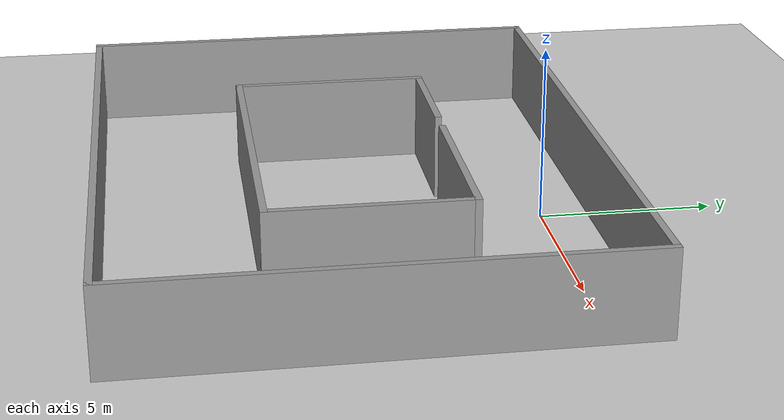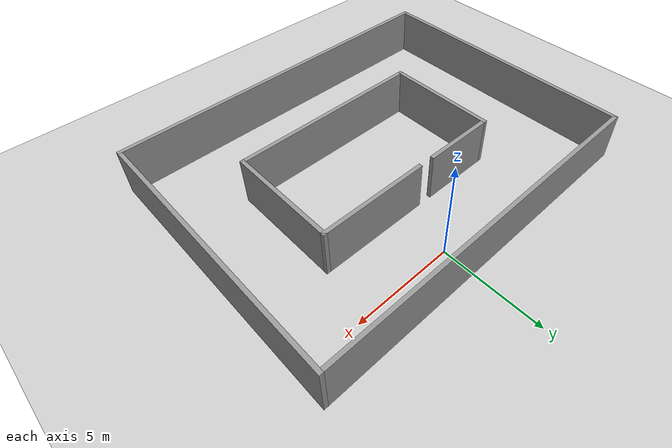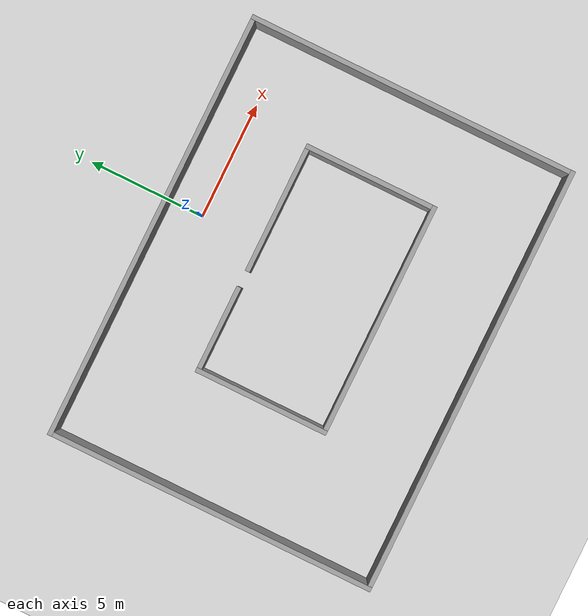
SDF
<sdf version="1.4">
 <world name="default">
  <light name="sun" type="directional">
   <pose>0 0 10 0 -0 0</pose>
   <diffuse>0.8 0.8 0.8 1</diffuse>
   <specular>0.2 0.2 0.2 1</specular>
   <attenuation>
    <range>1000</range>
    <constant>0.9</constant>
    <linear>0.01</linear>
    <quadratic>0.001</quadratic>
   </attenuation>
   <direction>-0.5 0.1 -0.9</direction>
  </light>
  <model name="ground_plane">
   <static>1</static>
   <link name="link">
    <collision name="collision">
     <geometry><plane><normal>0 0 1</normal><size>100 100</size></plane></geometry>
     <surface><friction><ode><mu>100</mu><mu2>50</mu2></ode></friction></surface>
    </collision>
    <visual name="visual">
     <cast_shadows>0</cast_shadows>
     <geometry><plane><normal>0 0 1</normal><size>100 100</size></plane></geometry>
     <material>
      <script><uri>file://media/materials/scripts/gazebo.material</uri><name>Gazebo/Grey</name></script>
     </material>
    </visual>
    <velocity_decay><linear>0</linear><angular>0</angular></velocity_decay>
   </link>
  </model>
  <physics type="ode">
   <max_step_size>0.001</max_step_size>
   <real_time_factor>1</real_time_factor>
   <real_time_update_rate>1000</real_time_update_rate>
   <gravity>0 0 -9.8</gravity>
  </physics>
  <scene><ambient>0.4 0.4 0.4 1</ambient><background>0.7 0.7 0.7 1</background><shadows>1</shadows></scene>
  <spherical_coordinates>
   <surface_model>EARTH_WGS84</surface_model>
   <latitude_deg>0</latitude_deg>
   <longitude_deg>0</longitude_deg>
   <elevation>0</elevation>
   <heading_deg>0</heading_deg>
  </spherical_coordinates>
  <model name="double_circle_v4">
   <link name="Wall_1">
    <collision name="Wall_1_Collision">
     <geometry><box><size>18.2497 0.2 2.5</size></box></geometry>
     <pose>0 0 1.25 0 -0 0</pose>
    </collision>
    <visual name="Wall_1_Visual">
     <pose>0 0 1.25 0 -0 0</pose>
     <geometry><box><size>18.2497 0.2 2.5</size></box></geometry>
     <material>
      <script><uri>file://media/materials/scripts/gazebo.material</uri><name>Gazebo/Grey</name></script>
     </material>
    </visual>
    <velocity_decay><linear>0</linear><angular>0</angular></velocity_decay>
    <pose>-1.31682 1.47383 0 0 -0 3.14159</pose>
   </link>
   <link name="Wall_10">
    <collision name="Wall_10_Collision">
     <geometry><box><size>5.74435 0.2 2.5</size></box></geometry>
     <pose>0 0 1.25 0 -0 0</pose>
    </collision>
    <visual name="Wall_10_Visual">
     <pose>0 0 1.25 0 -0 0</pose>
     <geometry><box><size>5.74435 0.2 2.5</size></box></geometry>
     <material>
      <script><uri>file://media/materials/scripts/gazebo.material</uri><name>Gazebo/Grey</name></script>
     </material>
    </visual>
    <velocity_decay><linear>0</linear><angular>0</angular></velocity_decay>
    <pose>-5.56691 -5.44349 0 0 0 -1.5708</pose>
   </link>
   <link name="Wall_11">
    <collision name="Wall_11_Collision">
     <geometry><box><size>10.0294 0.2 2.5</size></box></geometry>
     <pose>0 0 1.25 0 -0 0</pose>
    </collision>
    <visual name="Wall_11_Visual">
     <pose>0 0 1.25 0 -0 0</pose>
     <geometry><box><size>10.0294 0.2 2.5</size></box></geometry>
     <material>
      <script><uri>file://media/materials/scripts/gazebo.material</uri><name>Gazebo/Grey</name></script>
     </material>
    </visual>
    <velocity_decay><linear>0</linear><angular>0</angular></velocity_decay>
    <pose>-0.652198 -8.21567 0 0 -0 0</pose>
   </link>
   <link name="Wall_12">
    <collision name="Wall_12_Collision">
     <geometry><box><size>5.72686 0.2 2.5</size></box></geometry>
     <pose>0 0 1.25 0 -0 0</pose>
    </collision>
    <visual name="Wall_12_Visual">
     <pose>0 0 1.25 0 -0 0</pose>
     <geometry><box><size>5.72686 0.2 2.5</size></box></geometry>
     <material>
      <script><uri>file://media/materials/scripts/gazebo.material</uri><name>Gazebo/Grey</name></script>
     </material>
    </visual>
    <velocity_decay><linear>0</linear><angular>0</angular></velocity_decay>
    <pose>4.26251 -5.45224 0 0 -0 1.5708</pose>
   </link>
   <link name="Wall_13">
    <collision name="Wall_13_Collision">
     <geometry><box><size>5.56945 0.2 2.5</size></box></geometry>
     <pose>0 0 1.25 0 -0 0</pose>
    </collision>
    <visual name="Wall_13_Visual">
     <pose>0 0 1.25 0 -0 0</pose>
     <geometry><box><size>5.56945 0.2 2.5</size></box></geometry>
     <material>
      <script><uri>file://media/materials/scripts/gazebo.material</uri><name>Gazebo/Grey</name></script>
     </material>
    </visual>
    <velocity_decay><linear>0</linear><angular>0</angular></velocity_decay>
    <pose>1.57778 -2.68881 0 0 -0 3.14159</pose>
   </link>
   <link name="Wall_2">
    <collision name="Wall_2_Collision">
     <geometry><box><size>14.1746 0.2 2.5</size></box></geometry>
     <pose>0 0 1.25 0 -0 0</pose>
    </collision>
    <visual name="Wall_2_Visual">
     <pose>0 0 1.25 0 -0 0</pose>
     <geometry><box><size>14.1746 0.2 2.5</size></box></geometry>
     <material>
      <script><uri>file://media/materials/scripts/gazebo.material</uri><name>Gazebo/Grey</name></script>
     </material>
    </visual>
    <velocity_decay><linear>0</linear><angular>0</angular></velocity_decay>
    <pose>-10.3417 -5.51345 0 0 0 -1.5708</pose>
   </link>
   <link name="Wall_3">
    <collision name="Wall_3_Collision">
     <geometry><box><size>18.4421 0.2 2.5</size></box></geometry>
     <pose>0 0 1.25 0 -0 0</pose>
    </collision>
    <visual name="Wall_3_Visual">
     <pose>0 0 1.25 0 -0 0</pose>
     <geometry><box><size>18.4421 0.2 2.5</size></box></geometry>
     <material>
      <script><uri>file://media/materials/scripts/gazebo.material</uri><name>Gazebo/Grey</name></script>
     </material>
    </visual>
    <velocity_decay><linear>0</linear><angular>0</angular></velocity_decay>
    <pose>-1.22063 -12.5007 0 0 -0 0</pose>
   </link>
   <link name="Wall_4">
    <collision name="Wall_4_Collision">
     <geometry><box><size>14.1746 0.2 2.5</size></box></geometry>
     <pose>0 0 1.25 0 -0 0</pose>
    </collision>
    <visual name="Wall_4_Visual">
     <pose>0 0 1.25 0 -0 0</pose>
     <geometry><box><size>14.1746 0.2 2.5</size></box></geometry>
     <material>
      <script><uri>file://media/materials/scripts/gazebo.material</uri><name>Gazebo/Grey</name></script>
     </material>
    </visual>
    <velocity_decay><linear>0</linear><angular>0</angular></velocity_decay>
    <pose>7.90044 -5.51345 0 0 -0 1.5708</pose>
   </link>
   <link name="Wall_9">
    <collision name="Wall_9_Collision">
     <geometry><box><size>3.76797 0.2 2.5</size></box></geometry>
     <pose>0 0 1.25 0 -0 0</pose>
    </collision>
    <visual name="Wall_9_Visual">
     <pose>0 0 1.25 0 -0 0</pose>
     <geometry><box><size>3.76797 0.2 2.5</size></box></geometry>
     <material>
      <script><uri>file://media/materials/scripts/gazebo.material</uri><name>Gazebo/Grey</name></script>
     </material>
    </visual>
    <velocity_decay><linear>0</linear><angular>0</angular></velocity_decay>
    <pose>-3.78292 -2.67132 0 0 -0 3.14159</pose>
   </link>
   <static>1</static>
  </model>
 </world>
</sdf>
